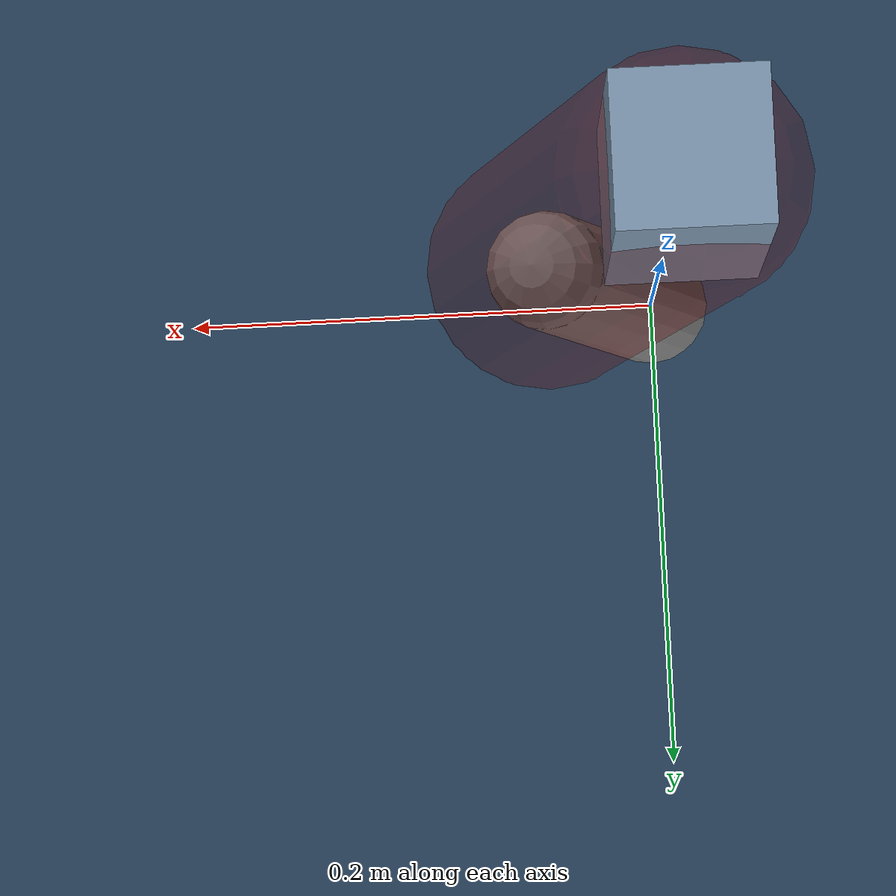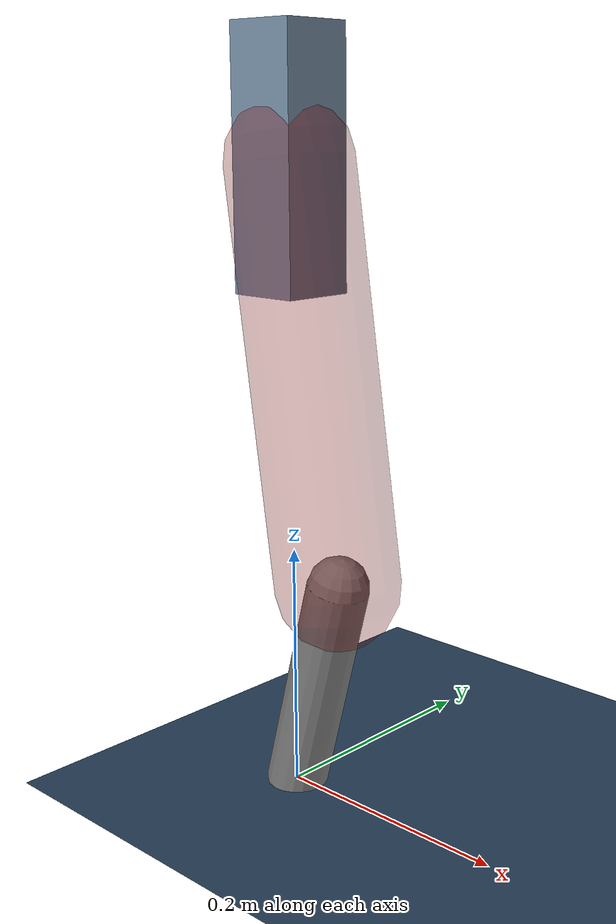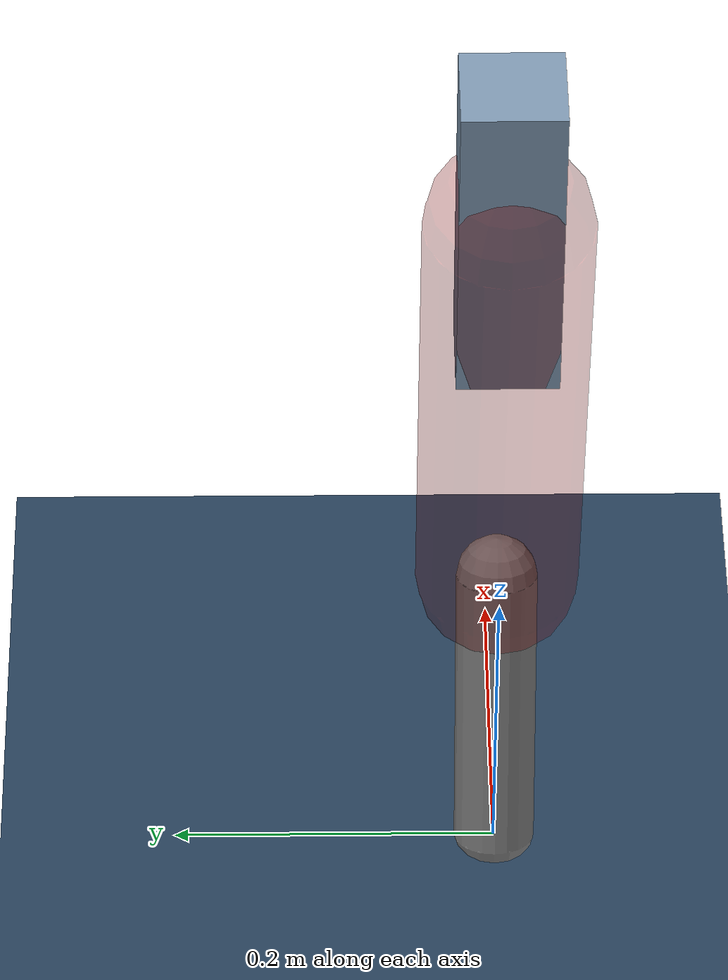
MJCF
<mujoco model="Hopper2D">
	<compiler inertiafromgeom="true" angle="radian" />
	<option timestep="0.001" integrator="implicit" cone="elliptic" solver="Newton" tolerance="1e-10" />

	<default>
		<geom contype="1" conaffinity="1" condim="3" friction="2 0.005 0.0001" solref="0.005 1" />
		<joint limited="true" damping="0.1" />
	</default>

	<asset>
		<texture name="skybox" type="skybox" builtin="gradient" rgb1=".4 .6 .8" rgb2="0 0 0" width="800" height="800" />
		<texture name="grid" type="2d" builtin="checker" rgb1=".1 .2 .3" rgb2=".2 .3 .4" width="300" height="300" mark="edge" markrgb=".2 .3 .4" />
		<material name="ground" texture="grid" texrepeat="1 1" texuniform="true" reflectance="0.1" />
		<material name="leg" rgba="0.5 0.6 0.7 1" />
	</asset>

	<worldbody>

		<geom name="floor" type="plane" size="5 5 0.25" material="ground" />

		<light directional="false" diffuse="0.8 0.8 0.8" specular="0.3 0.3 0.3" pos="0 0 2" dir="0 0 -1" />
		<light mode="targetbodycom" target="base" directional="false" diffuse="0.8 0.8 0.8" specular="0.3 0.3 0.3" pos="0 0 2" dir="0 0 -1" />

		<camera name="fixed" pos="0 -2 1" xyaxes="1 0 0 0 0 1" />
		<camera name="tracking" mode="trackcom" pos="0 -3 1" />

		<body name="root" pos="0 0 0.5062341897850253">
			<joint name="slide_x" type="slide" axis="1 0 0" range="-100 100" />
			<joint name="slide_z" type="slide" axis="0 0 1" range="0 10" />

			<body name="base" pos="0 0 0">
				<geom name="torso" type="box" size="0.03 0.03 0.1" mass="2.8739999999999997" material="leg" />

				<body name="link1" pos="0 0 0" euler="0 1.4230288167543843 0">
					<joint type="hinge" axis="0 -1 0" pos="0 0 0" name="hinge1" limited="true" range="-3.14 3.14" stiffness="0" damping="0.1" />
					<geom name="thigh" type="capsule" fromto="0 0 0 0.32947093015489515 0 0" size="0.05" rgba="0.5 0 0 0.3" mass="1.069371511418217" />

					<body name="link2" pos="0.32947093015489515 0 0" euler="0 0.4105106381203458 0">
						<joint type="hinge" axis="0 -1 0" pos="0 0 0" name="hinge2" limited="true" range="-3.14 3.14" stiffness="0" damping="0.1" />
						<geom name="shank" type="capsule" fromto="0 0 0 0.18676325963013024 0 0" size="0.025" mass="0.38968693366711726" />

					</body>
				</body>
			</body>
		</body>
	</worldbody>

	<actuator>
		<motor name="torque1" joint="hinge1" ctrlrange="-53.3825235194889 53.3825235194889" ctrllimited="true" gear="1" />
		<motor name="torque2" joint="hinge2" ctrlrange="-129.89022916508813 129.89022916508813" ctrllimited="true" gear="1" />
	</actuator>
</mujoco>
